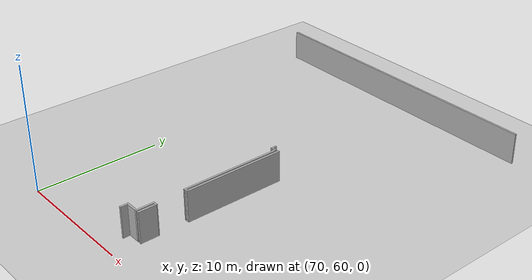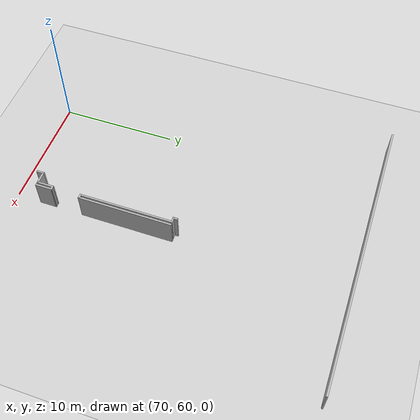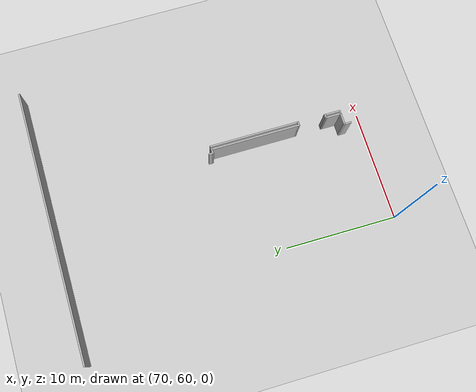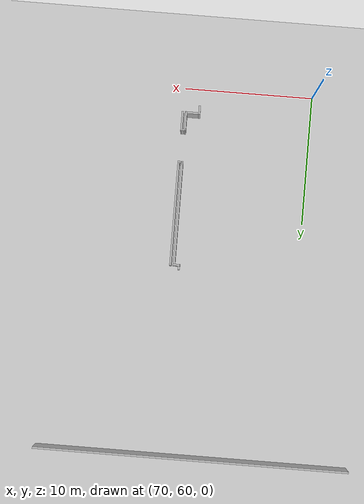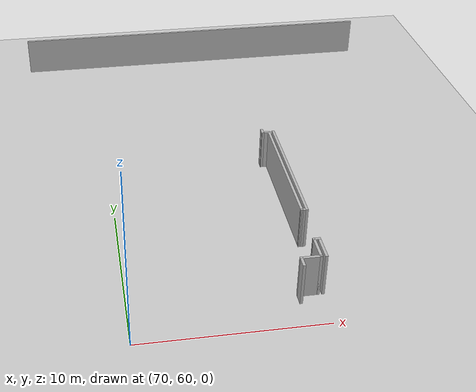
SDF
<sdf version="1.6">
 <world name="default">
  <model name="ground_plane">
   <static>1</static>
   <link name="link">
    <collision name="collision">
     <geometry><plane><normal>0 0 1</normal><size>200 100</size></plane></geometry>
     <surface><friction><ode><mu>100</mu><mu2>50</mu2></ode></friction></surface>
    </collision>
    <visual name="visual">
     <cast_shadows>0</cast_shadows>
     <geometry><plane><normal>0 0 1</normal><size>200 100</size></plane></geometry>
     <material>
      <script><uri>file://media/materials/scripts/gazebo.material</uri><name>Gazebo/Grey</name></script>
     </material>
    </visual>
   </link>
  </model>
  <model name="vgke_production">
   <link name="Wall_235">
    <pose>-19.8319 14.4861 0 0 -0 1.5708</pose>
    <visual name="Wall_235_Visual">
     <pose>0 0 1.25 0 -0 0</pose>
     <geometry><box><size>0.687943 0.15 2.5</size></box></geometry>
    </visual>
    <collision name="Wall_235_Collision">
     <pose>0 0 1.25 0 -0 0</pose>
     <geometry><box><size>0.687943 0.15 2.5</size></box></geometry>
    </collision>
    <inertial>
     <inertia><ixx>1</ixx><ixy>0</ixy><ixz>0</ixz><iyy>1</iyy><iyz>0</iyz><izz>1</izz></inertia>
     <mass>1</mass>
    </inertial>
   </link>
   <link name="Wall_236">
    <pose>-19.3249 14.755 0 0 -0 0</pose>
    <visual name="Wall_236_Visual">
     <pose>0 0 1.25 0 -0 0</pose>
     <geometry><box><size>1.16419 0.15 2.5</size></box></geometry>
    </visual>
    <collision name="Wall_236_Collision">
     <pose>0 0 1.25 0 -0 0</pose>
     <geometry><box><size>1.16419 0.15 2.5</size></box></geometry>
    </collision>
    <inertial>
     <inertia><ixx>1</ixx><ixy>0</ixy><ixz>0</ixz><iyy>1</iyy><iyz>0</iyz><izz>1</izz></inertia>
     <mass>1</mass>
    </inertial>
   </link>
   <link name="Wall_238">
    <pose>-18.8178 15.43 0 0 -0 1.5708</pose>
    <visual name="Wall_238_Visual">
     <pose>0 0 1.25 0 -0 0</pose>
     <geometry><box><size>1.5 0.15 2.5</size></box></geometry>
    </visual>
    <collision name="Wall_238_Collision">
     <pose>0 0 1.25 0 -0 0</pose>
     <geometry><box><size>1.5 0.15 2.5</size></box></geometry>
    </collision>
    <inertial>
     <inertia><ixx>1</ixx><ixy>0</ixy><ixz>0</ixz><iyy>1</iyy><iyz>0</iyz><izz>1</izz></inertia>
     <mass>1</mass>
    </inertial>
   </link>
   <link name="Wall_239">
    <pose>-18.6855 16.1047 0 0 0 -0.002768</pose>
    <visual name="Wall_239_Visual">
     <pose>0 0 1.25 0 -0 0</pose>
     <geometry><box><size>0.414563 0.15 2.5</size></box></geometry>
    </visual>
    <collision name="Wall_239_Collision">
     <pose>0 0 1.25 0 -0 0</pose>
     <geometry><box><size>0.414563 0.15 2.5</size></box></geometry>
    </collision>
    <inertial>
     <inertia><ixx>1</ixx><ixy>0</ixy><ixz>0</ixz><iyy>1</iyy><iyz>0</iyz><izz>1</izz></inertia>
     <mass>1</mass>
    </inertial>
   </link>
   <link name="Wall_240">
    <pose>-18.5532 15.4293 0 0 0 -1.5708</pose>
    <visual name="Wall_240_Visual">
     <pose>0 0 1.25 0 -0 0</pose>
     <geometry><box><size>1.5 0.15 2.5</size></box></geometry>
    </visual>
    <collision name="Wall_240_Collision">
     <pose>0 0 1.25 0 -0 0</pose>
     <geometry><box><size>1.5 0.15 2.5</size></box></geometry>
    </collision>
    <inertial>
     <inertia><ixx>1</ixx><ixy>0</ixy><ixz>0</ixz><iyy>1</iyy><iyz>0</iyz><izz>1</izz></inertia>
     <mass>1</mass>
    </inertial>
   </link>
   <link name="Wall_249">
    <pose>-18.6836 18.6127 0 0 -0 0.022723</pose>
    <visual name="Wall_249_Visual">
     <pose>0 0 1.25 0 -0 0</pose>
     <geometry><box><size>0.406648 0.15 2.5</size></box></geometry>
    </visual>
    <collision name="Wall_249_Collision">
     <pose>0 0 1.25 0 -0 0</pose>
     <geometry><box><size>0.406648 0.15 2.5</size></box></geometry>
    </collision>
    <inertial>
     <inertia><ixx>1</ixx><ixy>0</ixy><ixz>0</ixz><iyy>1</iyy><iyz>0</iyz><izz>1</izz></inertia>
     <mass>1</mass>
    </inertial>
   </link>
   <link name="Wall_251">
    <pose>-18.8119 22.5347 0 0 -0 1.5708</pose>
    <visual name="Wall_251_Visual">
     <pose>0 0 1.25 0 -0 0</pose>
     <geometry><box><size>8 0.15 2.5</size></box></geometry>
    </visual>
    <collision name="Wall_251_Collision">
     <pose>0 0 1.25 0 -0 0</pose>
     <geometry><box><size>8 0.15 2.5</size></box></geometry>
    </collision>
    <inertial>
     <inertia><ixx>1</ixx><ixy>0</ixy><ixz>0</ixz><iyy>1</iyy><iyz>0</iyz><izz>1</izz></inertia>
     <mass>1</mass>
    </inertial>
   </link>
   <link name="Wall_253">
    <pose>-18.9966 26.5702 0 0 -0 0</pose>
    <visual name="Wall_253_Visual">
     <pose>0 0 1.25 0 -0 0</pose>
     <geometry><box><size>0.548787 0.15 2.5</size></box></geometry>
    </visual>
    <collision name="Wall_253_Collision">
     <pose>0 0 1.25 0 -0 0</pose>
     <geometry><box><size>0.548787 0.15 2.5</size></box></geometry>
    </collision>
    <inertial>
     <inertia><ixx>1</ixx><ixy>0</ixy><ixz>0</ixz><iyy>1</iyy><iyz>0</iyz><izz>1</izz></inertia>
     <mass>1</mass>
    </inertial>
   </link>
   <link name="Wall_255">
    <pose>-19.1955 26.7106 0 0 -0 1.5675</pose>
    <visual name="Wall_255_Visual">
     <pose>0 0 1.25 0 -0 0</pose>
     <geometry><box><size>0.431146 0.15 2.5</size></box></geometry>
    </visual>
    <collision name="Wall_255_Collision">
     <pose>0 0 1.25 0 -0 0</pose>
     <geometry><box><size>0.431146 0.15 2.5</size></box></geometry>
    </collision>
    <inertial>
     <inertia><ixx>1</ixx><ixy>0</ixy><ixz>0</ixz><iyy>1</iyy><iyz>0</iyz><izz>1</izz></inertia>
     <mass>1</mass>
    </inertial>
   </link>
   <link name="Wall_309">
    <pose>-18.538 22.5922 0 0 0 -1.57113</pose>
    <visual name="Wall_309_Visual">
     <pose>0 0 1.25 0 -0 0</pose>
     <geometry><box><size>8.11242 0.15 2.5</size></box></geometry>
    </visual>
    <collision name="Wall_309_Collision">
     <pose>0 0 1.25 0 -0 0</pose>
     <geometry><box><size>8.11242 0.15 2.5</size></box></geometry>
    </collision>
    <inertial>
     <inertia><ixx>1</ixx><ixy>0</ixy><ixz>0</ixz><iyy>1</iyy><iyz>0</iyz><izz>1</izz></inertia>
     <mass>1</mass>
    </inertial>
   </link>
   <link name="Wall_584">
    <pose>-21.2868 41.4959 0 0 -0 3.14159</pose>
    <visual name="Wall_584_Visual">
     <pose>0 0 1.25 0 -0 0</pose>
     <geometry><box><size>24.5 0.15 2.5</size></box></geometry>
    </visual>
    <collision name="Wall_584_Collision">
     <pose>0 0 1.25 0 -0 0</pose>
     <geometry><box><size>24.5 0.15 2.5</size></box></geometry>
    </collision>
    <inertial>
     <inertia><ixx>1</ixx><ixy>0</ixy><ixz>0</ixz><iyy>1</iyy><iyz>0</iyz><izz>1</izz></inertia>
     <mass>1</mass>
    </inertial>
   </link>
   <pose>98.6 47.426 0.01 0 0 0</pose>
  </model>
 </world>
</sdf>
